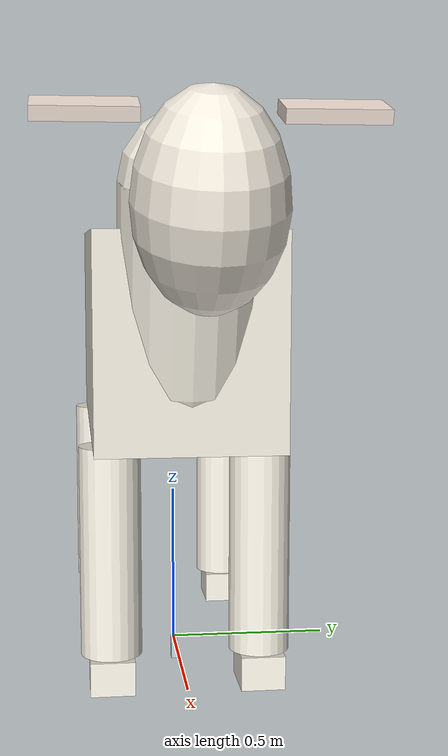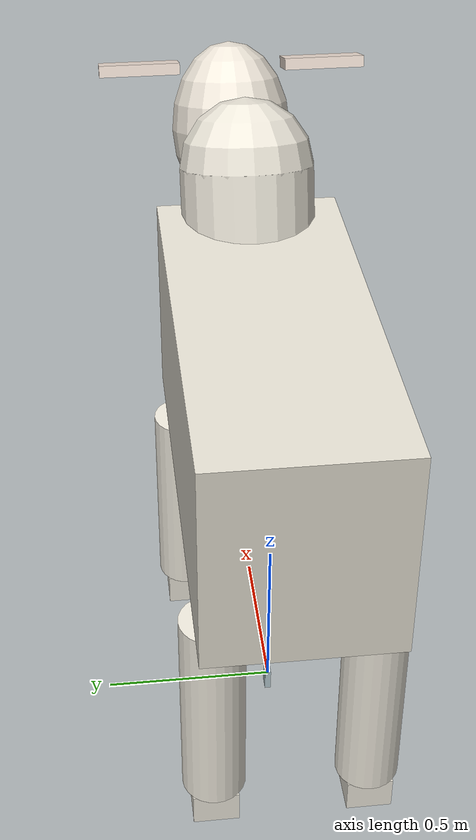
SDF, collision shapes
<?xml version="1.0"?>
<sdf version="1.9">
  <model name="riose_cow">
    <static>false</static>
    <self_collide>false</self_collide>
    <allow_auto_disable>false</allow_auto_disable>
    <link name="body">
      <!-- The link frame is near the torso COM. The model is ground-level at z=0. -->
      <pose>0 0 1.03 0 0 0</pose>
      <inertial>
        <pose>0 0 0 0 0 0</pose>
        <mass>450</mass>
        <inertia><ixx>81</ixx><iyy>285</iyy><izz>256</izz><ixy>0</ixy><ixz>0</ixz><iyz>0</iyz></inertia>
      </inertial>
      <visual name="barrel_white">
        <geometry><mesh><uri>meshes/torso.obj</uri></mesh></geometry>
        <material><ambient>0.83 0.81 0.77 1</ambient><diffuse>0.90 0.88 0.83 1</diffuse>
          <pbr><metal><albedo_map>meshes/cow_coat.png</albedo_map><normal_map>meshes/cow_normal.png</normal_map><roughness_map>meshes/cow_roughness.png</roughness_map><roughness>0.82</roughness><metalness>0</metalness></metal></pbr>
        </material>
      </visual>
      <collision name="barrel_collision">
        <geometry><box><size>1.30 0.54 0.62</size></box></geometry>
      </collision>
      <visual name="udder"><pose>-0.12 0 -0.34 0 0 0</pose><geometry><ellipsoid><radii>0.25 0.17 0.13</radii></ellipsoid></geometry><material><ambient>0.84 0.60 0.57 1</ambient><diffuse>0.92 0.68 0.64 1</diffuse></material></visual>
      <sensor name="camera_follow" type="camera"><always_on>true</always_on><update_rate>8</update_rate><topic>/riose/mvp3/camera/follow</topic><pose>-4.2 -5.5 2.9 0 0.32 0.92</pose><camera><horizontal_fov>0.88</horizontal_fov><image><width>640</width><height>360</height><format>R8G8B8</format></image><clip><near>0.08</near><far>80</far></clip></camera></sensor>
      <!-- The body visual carries the coat; this sensor belongs on the separately modeled ear tag. -->
    </link>

    <!-- One bounded world-axis DOF gives seeded trajectories root translation. -->
    <joint name="body_translation_joint" type="prismatic">
      <pose relative_to="body">0 0 0 0 0 0</pose>
      <parent>world</parent><child>body</child>
      <axis>
        <xyz expressed_in="__model__">1 0 0</xyz>
        <limit><lower>-50.0</lower><upper>50.0</upper><effort>12000</effort><velocity>3.0</velocity></limit>
        <dynamics><damping>4</damping><friction>0.2</friction></dynamics>
      </axis>
    </joint>

    <link name="neck">
      <pose relative_to="body">0.55 0 0.17 0 0.30 0</pose>
      <inertial><mass>28</mass><inertia><ixx>1.2</ixx><iyy>1.5</iyy><izz>1.2</izz><ixy>0</ixy><ixz>0</ixz><iyz>0</iyz></inertia></inertial>
      <visual name="neck_form"><pose>0 0 0.02 0 0 0</pose><geometry><mesh><uri>meshes/neck.obj</uri></mesh></geometry><material><ambient>0.87 0.85 0.80 1</ambient><diffuse>0.92 0.90 0.85 1</diffuse><pbr><metal><albedo_map>meshes/cow_coat.png</albedo_map><normal_map>meshes/cow_normal.png</normal_map><roughness_map>meshes/cow_roughness.png</roughness_map><roughness>0.84</roughness><metalness>0</metalness></metal></pbr></material></visual>
      <collision name="neck_collision"><geometry><capsule><radius>0.20</radius><length>0.56</length></capsule></geometry></collision>
    </link>
    <joint name="neck_fixed_joint" type="fixed">
      <pose relative_to="body">0.55 0 0.17 0 0.30 0</pose><parent>body</parent><child>neck</child>
    </joint>

    <link name="head">
      <pose relative_to="neck">0.43 0 0.34 0 0 0</pose>
      <inertial><mass>12</mass><inertia><ixx>0.28</ixx><iyy>0.34</iyy><izz>0.30</izz><ixy>0</ixy><ixz>0</ixz><iyz>0</iyz></inertia></inertial>
      <visual name="skull"><geometry><mesh><uri>meshes/head.obj</uri></mesh></geometry><material><ambient>0.88 0.86 0.81 1</ambient><diffuse>0.94 0.91 0.86 1</diffuse><pbr><metal><albedo_map>meshes/cow_skin.png</albedo_map><normal_map>meshes/cow_normal.png</normal_map><roughness_map>meshes/cow_roughness.png</roughness_map><roughness>0.8</roughness><metalness>0</metalness></metal></pbr></material></visual>
      <collision name="head_collision"><geometry><ellipsoid><radii>0.25 0.19 0.27</radii></ellipsoid></geometry></collision>
      <visual name="muzzle"><pose>0.25 0 -0.18 0 0.24 0</pose><geometry><ellipsoid><radii>0.23 0.19 0.15</radii></ellipsoid></geometry><material><ambient>0.77 0.49 0.45 1</ambient><diffuse>0.88 0.58 0.53 1</diffuse></material></visual>
      <visual name="nostril_left"><pose>0.415 0.115 -0.155 0 0.2 0</pose><geometry><sphere><radius>0.028</radius></sphere></geometry><material><ambient>0.10 0.055 0.055 1</ambient><diffuse>0.12 0.065 0.065 1</diffuse></material></visual>
      <visual name="nostril_right"><pose>0.415 -0.115 -0.155 0 0.2 0</pose><geometry><sphere><radius>0.028</radius></sphere></geometry><material><ambient>0.10 0.055 0.055 1</ambient><diffuse>0.12 0.065 0.065 1</diffuse></material></visual>
      <visual name="eye_left"><pose>0.08 0.194 0.06 0 0 0</pose><geometry><sphere><radius>0.045</radius></sphere></geometry><material><ambient>0.04 0.035 0.03 1</ambient><diffuse>0.045 0.040 0.035 1</diffuse></material></visual>
      <visual name="eye_right"><pose>0.08 -0.194 0.06 0 0 0</pose><geometry><sphere><radius>0.045</radius></sphere></geometry><material><ambient>0.04 0.035 0.03 1</ambient><diffuse>0.045 0.040 0.035 1</diffuse></material></visual>
      <!-- Small cream horn stubs; stylized rather than breed-specific. -->
      <visual name="horn_left"><pose>-0.06 0.145 0.275 0.46 0 0</pose><geometry><cone><radius>0.014</radius><length>0.055</length></cone></geometry><material><ambient>0.75 0.69 0.55 1</ambient><diffuse>0.83 0.77 0.62 1</diffuse></material></visual>
      <visual name="horn_right"><pose>-0.06 -0.145 0.275 -0.46 0 0</pose><geometry><cone><radius>0.014</radius><length>0.055</length></cone></geometry><material><ambient>0.75 0.69 0.55 1</ambient><diffuse>0.83 0.77 0.62 1</diffuse></material></visual>
    </link>
    <joint name="head_pitch_joint" type="revolute">
      <pose relative_to="neck">0.34 0 0.24 0 0 0</pose><parent>neck</parent><child>head</child>
      <axis><xyz expressed_in="__model__">0 1 0</xyz><limit><lower>-0.30</lower><upper>0.30</upper><effort>90</effort><velocity>0.8</velocity></limit><dynamics><damping>8</damping><friction>1</friction></dynamics></axis>
    </joint>

    <!-- Ear link origins are the intended tag-pivot anchors; +Y is the cow's left side. -->
    <link name="ear_left">
      <!-- Enables the ear/tag contact pair through the intervening stud link;
           the neighboring head is excluded by their direct revolute joint. -->
      <self_collide>true</self_collide>
      <pose relative_to="head">-0.05 0.22 0.20 0 0 0</pose>
      <inertial><mass>0.12</mass><inertia><ixx>0.0005</ixx><iyy>0.0005</iyy><izz>0.0005</izz><ixy>0</ixy><ixz>0</ixz><iyz>0</iyz></inertia></inertial>
      <visual name="ear_left_outer"><geometry><mesh><uri>meshes/ear.obj</uri></mesh></geometry><material><ambient>0.89 0.84 0.79 1</ambient><diffuse>0.94 0.88 0.83 1</diffuse><pbr><metal><albedo_map>meshes/cow_skin.png</albedo_map><normal_map>meshes/cow_normal.png</normal_map><roughness_map>meshes/cow_roughness.png</roughness_map><roughness>0.72</roughness><metalness>0</metalness></metal></pbr></material></visual>
      <visual name="ear_left_inner"><pose>0.025 0.087 0.020 0.08 0 0</pose><geometry><ellipsoid><radii>0.050 0.105 0.012</radii></ellipsoid></geometry><material><ambient>0.76 0.42 0.42 1</ambient><diffuse>0.88 0.55 0.55 1</diffuse></material></visual>
      <collision name="ear_left_collision"><pose>0 0.07 0 0 0 0</pose><geometry><box><size>0.12 0.25 0.035</size></box></geometry></collision>
      <sensor name="ear_tag_contact" type="contact">
        <always_on>true</always_on><update_rate>100</update_rate>
        <contact><collision>ear_left_collision</collision><topic>/riose/mvp3/ear_tag/contact</topic></contact>
      </sensor>
    </link>
    <joint name="ear_left_joint" type="revolute">
      <pose relative_to="head">-0.05 0.22 0.20 0 0 0</pose><parent>head</parent><child>ear_left</child>
      <axis><xyz expressed_in="__model__">1 0 0</xyz><limit><lower>-0.25</lower><upper>0.25</upper><effort>4</effort><velocity>1.0</velocity></limit><dynamics><damping>0.35</damping><friction>0.04</friction></dynamics></axis>
    </joint>

    <include>
      <uri>model://riose_ear_tag</uri>
      <name>riose_ear_tag</name>
      <pose relative_to="ear_left">0 0 0 1.570796 0 3.141593</pose>
    </include>
    <link name="attachment_stud">
      <pose relative_to="ear_left">0 0 0 0 0 0</pose>
      <inertial><mass>0.001</mass><inertia><ixx>1.3e-8</ixx><iyy>1.3e-8</iyy><izz>2.0e-9</izz><ixy>0</ixy><ixz>0</ixz><iyz>0</iyz></inertia></inertial>
      <visual name="pivot_stud"><geometry><cylinder><radius>0.002</radius><length>0.012</length></cylinder></geometry>
        <material><ambient>0.42 0.45 0.46 1</ambient><diffuse>0.54 0.57 0.58 1</diffuse><specular>0.55 0.55 0.55 1</specular><pbr><metal><roughness>0.28</roughness><metalness>0.72</metalness></metal></pbr></material>
      </visual>
      <collision name="pivot_stud_collision"><geometry><cylinder><radius>0.002</radius><length>0.012</length></cylinder></geometry></collision>
    </link>
    <joint name="ear_tag_stud_fixation" type="fixed">
      <pose relative_to="ear_left">0 0 0 0 0 0</pose><parent>ear_left</parent><child>attachment_stud</child>
    </joint>
    <joint name="riose_ear_tag_attachment" type="revolute">
      <pose relative_to="attachment_stud">0 0 0 0 0 0</pose>
      <parent>attachment_stud</parent>
      <child>riose_ear_tag::tag_link</child>
      <axis>
        <xyz expressed_in="ear_left">1 0 0</xyz>
        <limit><lower>-0.523599</lower><upper>0.523599</upper><effort>1</effort><velocity>6.28</velocity></limit>
        <dynamics><damping>0.02</damping><spring_reference>0</spring_reference><spring_stiffness>0.1</spring_stiffness></dynamics>
      </axis>
    </joint>
    <link name="ear_right">
      <pose relative_to="head">-0.05 -0.22 0.20 0 0 0</pose>
      <inertial><mass>0.12</mass><inertia><ixx>0.0005</ixx><iyy>0.0005</iyy><izz>0.0005</izz><ixy>0</ixy><ixz>0</ixz><iyz>0</iyz></inertia></inertial>
      <visual name="ear_right_outer"><pose>0 0 0 0 0 3.141593</pose><geometry><mesh><uri>meshes/ear.obj</uri></mesh></geometry><material><ambient>0.89 0.84 0.79 1</ambient><diffuse>0.94 0.88 0.83 1</diffuse><pbr><metal><albedo_map>meshes/cow_skin.png</albedo_map><normal_map>meshes/cow_normal.png</normal_map><roughness_map>meshes/cow_roughness.png</roughness_map><roughness>0.72</roughness><metalness>0</metalness></metal></pbr></material></visual>
      <visual name="ear_right_inner"><pose>0.025 -0.087 0.020 -0.08 0 0</pose><geometry><ellipsoid><radii>0.050 0.105 0.012</radii></ellipsoid></geometry><material><ambient>0.76 0.42 0.42 1</ambient><diffuse>0.88 0.55 0.55 1</diffuse></material></visual>
      <collision name="ear_right_collision"><pose>0 -0.07 0 0 0 0</pose><geometry><box><size>0.12 0.25 0.035</size></box></geometry></collision>
    </link>
    <joint name="ear_right_joint" type="revolute"><pose relative_to="head">-0.05 -0.22 0.20 0 0 0</pose><parent>head</parent><child>ear_right</child>
      <axis><xyz expressed_in="__model__">1 0 0</xyz><limit><lower>-0.25</lower><upper>0.25</upper><effort>4</effort><velocity>1.0</velocity></limit><dynamics><damping>0.35</damping><friction>0.04</friction></dynamics></axis>
    </joint>

    <!-- One revolute hip/shoulder per leg keeps the MVP small and controllable. -->
    <link name="front_left_leg">
      <pose relative_to="body">0.43 0.22 -0.31 0 0 0</pose>
      <inertial><mass>7.5</mass><inertia><ixx>0.18</ixx><iyy>0.18</iyy><izz>0.025</izz><ixy>0</ixy><ixz>0</ixz><iyz>0</iyz></inertia></inertial>
      <visual name="upper_leg"><geometry><mesh><uri>meshes/leg.obj</uri></mesh></geometry><material><ambient>0.88 0.86 0.81 1</ambient><diffuse>0.94 0.92 0.87 1</diffuse><pbr><metal><albedo_map>meshes/cow_coat.png</albedo_map><roughness>0.85</roughness><metalness>0</metalness></metal></pbr></material></visual>
      <visual name="hoof"><pose>0.015 0 -0.67 0 0 0</pose><geometry><mesh><uri>meshes/hoof.obj</uri></mesh></geometry><material><ambient>0.17 0.15 0.13 1</ambient><diffuse>0.22 0.20 0.18 1</diffuse><pbr><metal><roughness>0.82</roughness><metalness>0</metalness></metal></pbr></material></visual>
      <collision name="leg_collision"><pose>0 0 -0.31 0 0 0</pose><geometry><cylinder><radius>0.09</radius><length>0.62</length></cylinder></geometry></collision>
      <collision name="hoof_collision"><pose>0.015 0 -0.67 0 0 0</pose><geometry><box><size>0.17 0.13 0.10</size></box></geometry></collision>
    </link>
    <joint name="front_left_leg_joint" type="revolute"><pose relative_to="body">0.43 0.22 -0.31 0 0 0</pose><parent>body</parent><child>front_left_leg</child><axis><xyz expressed_in="__model__">0 1 0</xyz><limit><lower>-0.35</lower><upper>0.35</upper><effort>140</effort><velocity>1.2</velocity></limit><dynamics><damping>12</damping><friction>1</friction></dynamics></axis></joint>

    <link name="front_right_leg">
      <pose relative_to="body">0.43 -0.22 -0.31 0 0 0</pose>
      <inertial><mass>7.5</mass><inertia><ixx>0.18</ixx><iyy>0.18</iyy><izz>0.025</izz><ixy>0</ixy><ixz>0</ixz><iyz>0</iyz></inertia></inertial>
      <visual name="upper_leg"><geometry><mesh><uri>meshes/leg.obj</uri></mesh></geometry><material><ambient>0.88 0.86 0.81 1</ambient><diffuse>0.94 0.92 0.87 1</diffuse><pbr><metal><albedo_map>meshes/cow_coat.png</albedo_map><roughness>0.85</roughness><metalness>0</metalness></metal></pbr></material></visual>
      <visual name="hoof"><pose>0.015 0 -0.67 0 0 0</pose><geometry><mesh><uri>meshes/hoof.obj</uri></mesh></geometry><material><ambient>0.17 0.15 0.13 1</ambient><diffuse>0.22 0.20 0.18 1</diffuse><pbr><metal><roughness>0.82</roughness><metalness>0</metalness></metal></pbr></material></visual>
      <collision name="leg_collision"><pose>0 0 -0.31 0 0 0</pose><geometry><cylinder><radius>0.09</radius><length>0.62</length></cylinder></geometry></collision>
      <collision name="hoof_collision"><pose>0.015 0 -0.67 0 0 0</pose><geometry><box><size>0.17 0.13 0.10</size></box></geometry></collision>
    </link>
    <joint name="front_right_leg_joint" type="revolute"><pose relative_to="body">0.43 -0.22 -0.31 0 0 0</pose><parent>body</parent><child>front_right_leg</child><axis><xyz expressed_in="__model__">0 1 0</xyz><limit><lower>-0.35</lower><upper>0.35</upper><effort>140</effort><velocity>1.2</velocity></limit><dynamics><damping>12</damping><friction>1</friction></dynamics></axis></joint>

    <link name="rear_left_leg">
      <pose relative_to="body">-0.48 0.22 -0.31 0 0 0</pose>
      <inertial><mass>7.5</mass><inertia><ixx>0.18</ixx><iyy>0.18</iyy><izz>0.025</izz><ixy>0</ixy><ixz>0</ixz><iyz>0</iyz></inertia></inertial>
      <visual name="upper_leg"><geometry><mesh><uri>meshes/leg.obj</uri></mesh></geometry><material><ambient>0.88 0.86 0.81 1</ambient><diffuse>0.94 0.92 0.87 1</diffuse><pbr><metal><albedo_map>meshes/cow_coat.png</albedo_map><roughness>0.85</roughness><metalness>0</metalness></metal></pbr></material></visual>
      <visual name="hoof"><pose>0.015 0 -0.67 0 0 0</pose><geometry><mesh><uri>meshes/hoof.obj</uri></mesh></geometry><material><ambient>0.17 0.15 0.13 1</ambient><diffuse>0.22 0.20 0.18 1</diffuse><pbr><metal><roughness>0.82</roughness><metalness>0</metalness></metal></pbr></material></visual>
      <collision name="leg_collision"><pose>0 0 -0.31 0 0 0</pose><geometry><cylinder><radius>0.09</radius><length>0.62</length></cylinder></geometry></collision>
      <collision name="hoof_collision"><pose>0.015 0 -0.67 0 0 0</pose><geometry><box><size>0.17 0.13 0.10</size></box></geometry></collision>
    </link>
    <joint name="rear_left_leg_joint" type="revolute"><pose relative_to="body">-0.48 0.22 -0.31 0 0 0</pose><parent>body</parent><child>rear_left_leg</child><axis><xyz expressed_in="__model__">0 1 0</xyz><limit><lower>-0.35</lower><upper>0.35</upper><effort>140</effort><velocity>1.2</velocity></limit><dynamics><damping>12</damping><friction>1</friction></dynamics></axis></joint>

    <link name="rear_right_leg">
      <pose relative_to="body">-0.48 -0.22 -0.31 0 0 0</pose>
      <inertial><mass>7.5</mass><inertia><ixx>0.18</ixx><iyy>0.18</iyy><izz>0.025</izz><ixy>0</ixy><ixz>0</ixz><iyz>0</iyz></inertia></inertial>
      <visual name="upper_leg"><geometry><mesh><uri>meshes/leg.obj</uri></mesh></geometry><material><ambient>0.88 0.86 0.81 1</ambient><diffuse>0.94 0.92 0.87 1</diffuse><pbr><metal><albedo_map>meshes/cow_coat.png</albedo_map><roughness>0.85</roughness><metalness>0</metalness></metal></pbr></material></visual>
      <visual name="hoof"><pose>0.015 0 -0.67 0 0 0</pose><geometry><mesh><uri>meshes/hoof.obj</uri></mesh></geometry><material><ambient>0.17 0.15 0.13 1</ambient><diffuse>0.22 0.20 0.18 1</diffuse><pbr><metal><roughness>0.82</roughness><metalness>0</metalness></metal></pbr></material></visual>
      <collision name="leg_collision"><pose>0 0 -0.31 0 0 0</pose><geometry><cylinder><radius>0.09</radius><length>0.62</length></cylinder></geometry></collision>
      <collision name="hoof_collision"><pose>0.015 0 -0.67 0 0 0</pose><geometry><box><size>0.17 0.13 0.10</size></box></geometry></collision>
    </link>
    <joint name="rear_right_leg_joint" type="revolute"><pose relative_to="body">-0.48 -0.22 -0.31 0 0 0</pose><parent>body</parent><child>rear_right_leg</child><axis><xyz expressed_in="__model__">0 1 0</xyz><limit><lower>-0.35</lower><upper>0.35</upper><effort>140</effort><velocity>1.2</velocity></limit><dynamics><damping>12</damping><friction>1</friction></dynamics></axis></joint>

    <!-- Gazebo Harmonic built-in controller: deterministic trajectories arrive on the model topic. -->
    <plugin filename="gz-sim-joint-trajectory-controller-system" name="gz::sim::systems::JointTrajectoryController">
      <topic>/model/riose_cow/joint_trajectory</topic>
      <joint_name>body_translation_joint</joint_name>
      <joint_name>head_pitch_joint</joint_name>
      <joint_name>ear_left_joint</joint_name>
      <joint_name>ear_right_joint</joint_name>
      <joint_name>front_left_leg_joint</joint_name>
      <joint_name>front_right_leg_joint</joint_name>
      <joint_name>rear_left_leg_joint</joint_name>
      <joint_name>rear_right_leg_joint</joint_name>
      <initial_position>0</initial_position><initial_position>0</initial_position><initial_position>0</initial_position><initial_position>0</initial_position>
      <initial_position>0</initial_position><initial_position>0</initial_position><initial_position>0</initial_position><initial_position>0</initial_position>
      <position_p_gain>2200</position_p_gain><position_p_gain>22</position_p_gain><position_p_gain>5</position_p_gain><position_p_gain>5</position_p_gain>
      <position_p_gain>35</position_p_gain><position_p_gain>35</position_p_gain><position_p_gain>35</position_p_gain><position_p_gain>35</position_p_gain>
      <position_d_gain>100</position_d_gain><position_d_gain>6</position_d_gain><position_d_gain>0.7</position_d_gain><position_d_gain>0.7</position_d_gain>
      <position_d_gain>5</position_d_gain><position_d_gain>5</position_d_gain><position_d_gain>5</position_d_gain><position_d_gain>5</position_d_gain>
      <position_cmd_min>-12000</position_cmd_min><position_cmd_min>-100</position_cmd_min><position_cmd_min>-8</position_cmd_min><position_cmd_min>-8</position_cmd_min>
      <position_cmd_min>-180</position_cmd_min><position_cmd_min>-180</position_cmd_min><position_cmd_min>-180</position_cmd_min><position_cmd_min>-180</position_cmd_min>
      <position_cmd_max>12000</position_cmd_max><position_cmd_max>100</position_cmd_max><position_cmd_max>8</position_cmd_max><position_cmd_max>8</position_cmd_max>
      <position_cmd_max>180</position_cmd_max><position_cmd_max>180</position_cmd_max><position_cmd_max>180</position_cmd_max><position_cmd_max>180</position_cmd_max>
    </plugin>
  </model>
</sdf>

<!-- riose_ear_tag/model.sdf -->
<sdf version="1.7">
  <model name="riose_ear_tag">
    <static>false</static>
    <self_collide>false</self_collide>
    <link name="tag_link">
      <inertial>
        <pose>-0.0171476 -0.022791 -0.0015002 0 0 0</pose>
        <mass>0.0271588</mass>
        <!-- Uniform-envelope box approximation; diagonal terms only. -->
        <inertia>
          <ixx>1.12398e-5</ixx>
          <iyy>4.04271e-6</iyy>
          <izz>1.37333e-5</izz>
          <ixy>0</ixy>
          <ixz>0</ixz>
          <iyz>0</iyz>
        </inertia>
      </inertial>

      <!--
        Four envelope boxes leave a 4 x 4 mm square relief around the nominal
        mounting hole. Shapes and mass properties remain provisional proxies.
      -->
      <visual name="mvp2_cad_enclosure">
        <pose>-0.015 -0.0308 -0.00925 0 0 0</pose>
        <geometry><mesh><uri>meshes/ear_tag_assumed.stl</uri><scale>0.001 0.001 0.001</scale></mesh></geometry>
        <material>
          <ambient>0.48 0.56 0.59 1</ambient>
          <diffuse>0.72 0.80 0.82 1</diffuse>
          <specular>0.12 0.12 0.12 1</specular>
          <!-- STL has no UV coordinates, so use an explicit PBR base color. -->
          <pbr><metal><roughness>0.82</roughness><metalness>0.02</metalness></metal></pbr>
        </material>
      </visual>
      <!-- ASSUMED visual-only polymer locking pin in the nominal mounting bore.
           It is not a validated part or a change to the ear-tag attachment. -->
      <visual name="provisional_black_locking_pin">
        <pose>0 0 0 0 0 0</pose>
        <geometry><cylinder><radius>0.0018</radius><length>0.0225</length></cylinder></geometry>
        <material>
          <ambient>0.055 0.060 0.065 1</ambient>
          <diffuse>0.085 0.095 0.105 1</diffuse>
          <specular>0.16 0.17 0.18 1</specular>
          <pbr>
            <metal>
              <albedo_map>materials/textures/black_polymer_albedo.png</albedo_map>
              <metalness>0</metalness>
              <roughness>0.62</roughness>
            </metal>
          </pbr>
        </material>
      </visual>

      <collision name="body_left_collision">
        <pose>-0.018 -0.0308 0 0 0 0</pose>
        <geometry><box><size>0.032 0.068 0.0185</size></box></geometry>
      </collision>
      <collision name="body_right_collision">
        <pose>0.003 -0.0308 0 0 0 0</pose>
        <geometry><box><size>0.002 0.068 0.0185</size></box></geometry>
      </collision>
      <collision name="body_above_hole_collision">
        <pose>0 0.0026 0 0 0 0</pose>
        <geometry><box><size>0.004 0.0012 0.0185</size></box></geometry>
      </collision>
      <collision name="body_below_hole_collision">
        <pose>0 -0.0334 0 0 0 0</pose>
        <geometry><box><size>0.004 0.0628 0.0185</size></box></geometry>
      </collision>

      <sensor name="imu" type="imu">
        <!-- Package placement is an ASSUMED candidate from geometry.json. -->
        <pose>-0.0188 -0.0613 -0.0061 0 0 0</pose>
        <always_on>true</always_on>
        <update_rate>50</update_rate>
        <topic>/riose/mvp3/imu/data</topic>
        <imu/>
      </sensor>
    </link>

    <!-- The nominal attachment pivot is the tag_link origin. -->
    <frame name="attachment_pivot" attached_to="tag_link">
      <pose>0 0 0 0 0 0</pose>
    </frame>
  </model>
</sdf>
